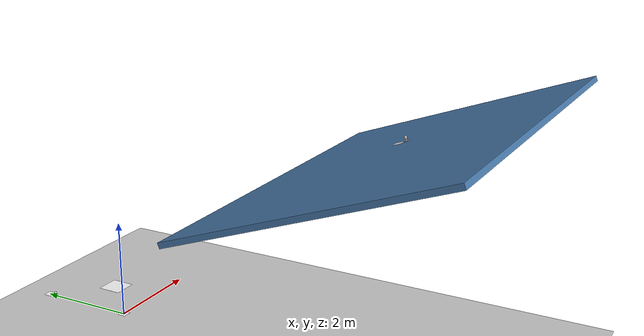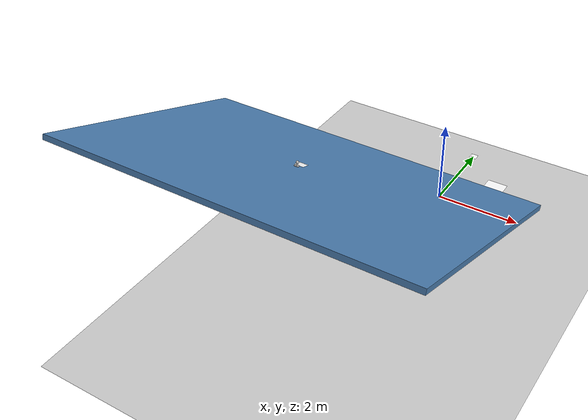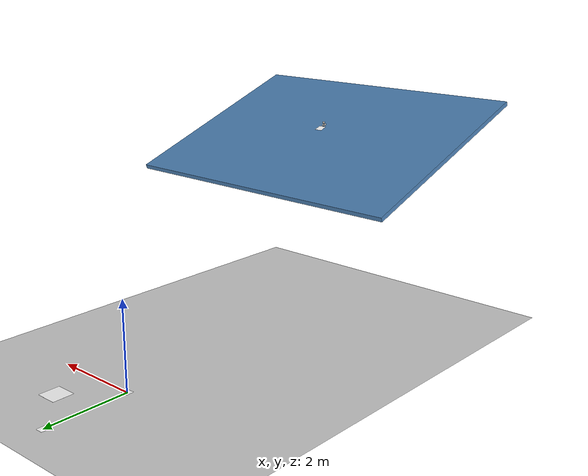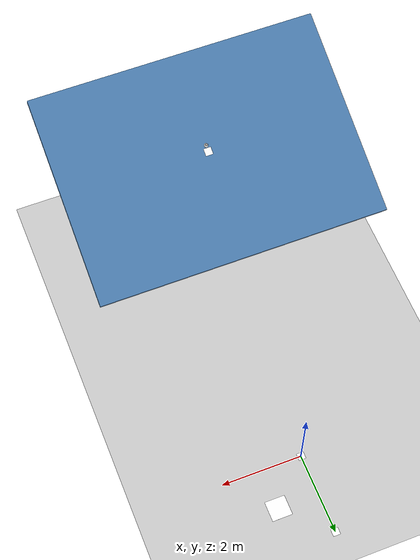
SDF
<sdf version="1.9">
 <world name="default">
  <physics type="ode">
   <max_step_size>0.004</max_step_size>
   <real_time_factor>1.0</real_time_factor>
   <real_time_update_rate>250</real_time_update_rate>
  </physics>
  <plugin name="gz::sim::systems::Physics" filename="gz-sim-physics-system"/>
  <plugin name="gz::sim::systems::UserCommands" filename="gz-sim-user-commands-system"/>
  <plugin name="gz::sim::systems::SceneBroadcaster" filename="gz-sim-scene-broadcaster-system"/>
  <plugin name="gz::sim::systems::Contact" filename="gz-sim-contact-system"/>
  <plugin name="gz::sim::systems::Imu" filename="gz-sim-imu-system"/>
  <plugin name="gz::sim::systems::AirPressure" filename="gz-sim-air-pressure-system"/>
  <plugin name="gz::sim::systems::ApplyLinkWrench" filename="gz-sim-apply-link-wrench-system"/>
  <plugin name="gz::sim::systems::NavSat" filename="gz-sim-navsat-system"/>
  <plugin name="gz::sim::systems::Sensors" filename="gz-sim-sensors-system">
   <render_engine>ogre2</render_engine>
  </plugin>
  <gravity>0 0 -9.8</gravity>
  <magnetic_field>6e-06 2.3e-05 -4.2e-05</magnetic_field>
  <atmosphere type="adiabatic"/>
  <scene>
   <grid>false</grid>
   <ambient>0.4 0.4 0.4 1</ambient>
   <background>0.7 0.7 0.7 1</background>
   <shadows>true</shadows>
  </scene>
  <model name="ground_plane">
   <static>true</static>
   <link name="link">
    <collision name="collision">
     <geometry><plane><normal>0 0 1</normal><size>1 1</size></plane></geometry>
    </collision>
    <visual name="visual">
     <geometry><plane><normal>0 0 1</normal><size>100 100</size></plane></geometry>
     <material>
      <ambient>0.8 0.8 0.8 1</ambient>
      <diffuse>0.8 0.8 0.8 1</diffuse>
      <specular>0.8 0.8 0.8 1</specular>
     </material>
    </visual>
    <inertial>
     <mass>1</mass>
     <inertia><ixx>1</ixx><ixy>0</ixy><ixz>0</ixz><iyy>1</iyy><iyz>0</iyz><izz>1</izz></inertia>
    </inertial>
   </link>
  </model>
  <light name="sunUTC" type="directional">
   <pose>0 0 500 0 -0 0</pose>
   <intensity>1</intensity>
   <direction>0.001 0.625 -0.78</direction>
   <diffuse>0.904 0.904 0.904 1</diffuse>
   <specular>0.271 0.271 0.271 1</specular>
   <attenuation><range>2000</range><linear>0</linear><constant>1</constant><quadratic>0</quadratic></attenuation>
   <spot><inner_angle>0</inner_angle><outer_angle>0</outer_angle><falloff>0</falloff></spot>
  </light>
  <spherical_coordinates>
   <surface_model>EARTH_WGS84</surface_model>
   <world_frame_orientation>ENU</world_frame_orientation>
   <latitude_deg>47.397971057728974</latitude_deg>
   <longitude_deg>8.546163739800146</longitude_deg>
   <elevation>0</elevation>
  </spherical_coordinates>
  <include><uri>model://azd_arucotag_dronehome_4x4_0_018</uri><pose>0 0 0.01 0 0 0</pose></include>
  <include><uri>model://azd_arucotag_bothome_4x4_1_018</uri><pose>0 2 0.01 0 0 -1.57</pose></include>
  <include><uri>model://azd_arucotag_homelandmark_4x4_2_05</uri><pose>1 1 0.01 0 0 0</pose></include>
  <include><uri>model://azd_solar_panel/</uri><pose>0 -6 4.342 -0.349 0 0</pose></include>
  <include><uri>model://azd_arucotag_bot_4x4_3_018/</uri><pose>0 -6 4.53 0 -0.349 -1.57</pose></include>
  <include>
   <uri>model://ball_mount_target_to_grip/</uri>
   <name>ball_mount_inclined</name>
   <pose>0 -6.138 4.59 0 -0.349 -1.57</pose>
  </include>
  <include>
   <uri>model://ball_mount_target_to_grip/</uri>
   <name>ball_mount_horizontal</name>
   <pose>0 1.85 0.01 0 0 0</pose>
  </include>
 </world>
</sdf>

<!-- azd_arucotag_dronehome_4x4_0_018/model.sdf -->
<sdf version='1.9'>
  <model name='azd_arucotag_dronehome_4x4_0_018'>
    <static>true</static>
    <pose>0 0 0.001 0 0 0</pose>
    <link name='base'>
      <visual name='base_visual'>
        <geometry>
          <plane>
            <normal>0 0 1</normal>
            <size>0.18 0.18</size>
          </plane>
        </geometry>
        <material>
          <diffuse>1 1 1 1</diffuse>
          <specular>0.4 0.4 0.4 1</specular>
          <pbr>
            <metal>
              <albedo_map>model://arucotag/stock/4x4_1000-0 (0.18).png</albedo_map>
            </metal>
          </pbr>
        </material>
      </visual>
    </link>
  </model>
</sdf>

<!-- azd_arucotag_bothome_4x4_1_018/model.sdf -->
<sdf version='1.9'>
  <model name='azd_arucotag_bothome_4x4_1_018'>
    <static>true</static>
    <pose>0 0 0.001 0 0 0</pose>
    <link name='base'>
      <visual name='base_visual'>
        <geometry>
          <plane>
            <normal>0 0 1</normal>
            <size>0.18 0.18</size>
          </plane>
        </geometry>
        <material>
          <diffuse>1 1 1 1</diffuse>
          <specular>0.4 0.4 0.4 1</specular>
          <pbr>
            <metal>
              <albedo_map>model://arucotag/stock/4x4_1000-1 (0.18).png</albedo_map>
            </metal>
          </pbr>
        </material>
      </visual>
    </link>
  </model>
</sdf>

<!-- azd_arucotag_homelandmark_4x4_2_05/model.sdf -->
<sdf version='1.9'>
  <model name='azd_arucotag_homelandmark_4x4_2_05'>
    <static>true</static>
    <pose>0 0 0.001 0 0 0</pose>
    <link name='base'>
      <visual name='base_visual'>
        <geometry>
          <plane>
            <normal>0 0 1</normal>
            <size>0.5 0.5</size>
          </plane>
        </geometry>
        <material>
          <diffuse>1 1 1 1</diffuse>
          <specular>0.4 0.4 0.4 1</specular>
          <pbr>
            <metal>
              <albedo_map>model://arucotag/stock/4x4_1000-2 (0.5).png</albedo_map>
            </metal>
          </pbr>
        </material>
      </visual>
    </link>
  </model>
</sdf>

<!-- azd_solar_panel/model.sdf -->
<sdf version="1.9">
  <model name="solar_panel">
    <static>false</static>
    <link name="solar_panel_link">
      <collision name="collision">
        <geometry>
          <box>
            <size>5 3 0.1</size>  <!-- Adjust size of the panel -->
          </box>
        </geometry>
      </collision>
      <visual name="visual">
        <geometry>
          <box>
            <size>7 5 0.1</size>  <!-- Adjust size of the panel -->
          </box>
        </geometry>
        <material>
          <ambient>0.3 0.5 0.7 1</ambient>  <!-- More blue shade -->
          <diffuse>0.3 0.5 0.7 1</diffuse>  <!-- More blue shade -->
          <specular>0.1 0.1 0.1 1</specular>  <!-- Matte finish -->
        </material>
      </visual>
    </link>
    <pose>0 0 1 0 0 0</pose>  <!-- Position of the solar panel -->
  </model>
</sdf>

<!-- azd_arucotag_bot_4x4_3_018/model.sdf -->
<sdf version='1.9'>
  <model name='azd_arucotag_bot_4x4_3_018'>
    <static>true</static>
    <pose>0 0 0.001 0 0 0</pose>
    <link name='base'>
      <visual name='base_visual'>
        <geometry>
          <plane>
            <normal>0 0 1</normal>
            <size>0.18 0.18</size>
          </plane>
        </geometry>
        <material>
          <diffuse>1 1 1 1</diffuse>
          <specular>0.4 0.4 0.4 1</specular>
          <pbr>
            <metal>
              <albedo_map>model://arucotag/stock/4x4_1000-3 (0.18).png</albedo_map>
            </metal>
          </pbr>
        </material>
      </visual>
    </link>
  </model>
</sdf>

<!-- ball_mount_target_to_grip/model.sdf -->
<sdf version="1.9">
  <model name="ball_mount">
    <static>true</static>
    <link name="base_link">
      <!-- Circular mounting plate -->
      <visual name="plate_visual">
        <geometry>
          <cylinder>
            <radius>0.05</radius>
            <length>0.008</length>
          </cylinder>
        </geometry>
        <material>
          <ambient>0.75 0.75 0.75 1.0</ambient>  <!-- Light silver color -->
          <diffuse>0.75 0.75 0.75 1.0</diffuse>  <!-- Light silver -->
          <specular>1.0 1.0 1.0 1.0</specular>  <!-- High specular for shininess -->
        </material>
      </visual>

      <!-- Cylindrical neck -->
      <visual name="neck_visual">
        <pose>0 0 0.035 0 0 0</pose>
        <geometry>
          <cylinder>
            <radius>0.0125</radius>
            <length>0.08</length>
          </cylinder>
        </geometry>
        <material>
          <ambient>0.75 0.75 0.75 1.0</ambient>  <!-- Light silver color -->
          <diffuse>0.75 0.75 0.75 1.0</diffuse>  <!-- Light silver -->
          <specular>1.0 1.0 1.0 1.0</specular>  <!-- High specular for shininess -->
        </material>
      </visual>

      <!-- Hemispherical ball -->
      <visual name="ball_visual">
        <pose>0 0 0.06 0 0 0</pose>
        <geometry>
          <sphere>
            <radius>0.0275</radius>
          </sphere>
        </geometry>
        <material>
          <ambient>0.75 0.75 0.75 1.0</ambient>  <!-- Light silver color -->
          <diffuse>0.75 0.75 0.75 1.0</diffuse>  <!-- Light silver -->
          <specular>1.0 1.0 1.0 1.0</specular>  <!-- High specular for shininess -->
        </material>
      </visual>
    </link>
  </model>
</sdf>
